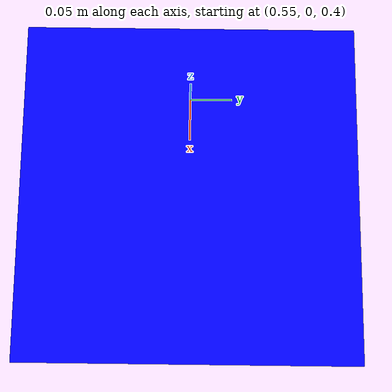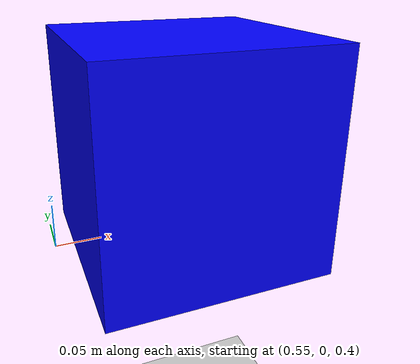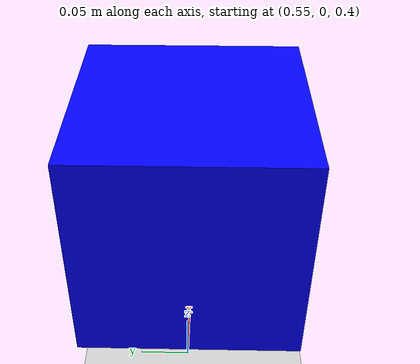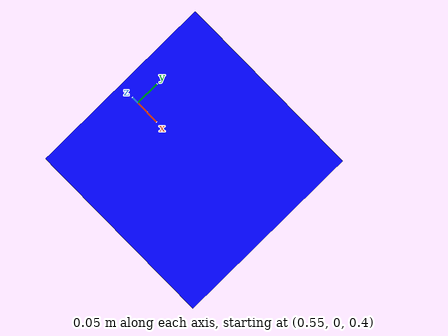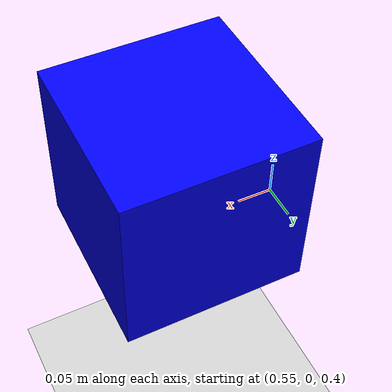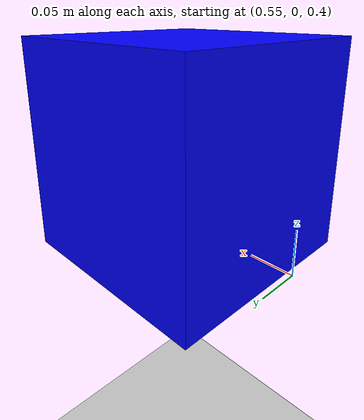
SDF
<?xml version="1.0" ?>
<sdf version="1.6">
  <world name="obstacle_world">
    <physics name="1ms" type="ode">
      <max_step_size>0.001</max_step_size>
      <real_time_factor>1.0</real_time_factor>
    </physics>
    <plugin filename="libignition-gazebo-physics-system.so" name="ignition::gazebo::systems::Physics"/>
    <plugin filename="libignition-gazebo-user-commands-system.so" name="ignition::gazebo::systems::UserCommands"/>
    <plugin filename="libignition-gazebo-scene-broadcaster-system.so" name="ignition::gazebo::systems::SceneBroadcaster"/>

    <light type="directional" name="sun">
      <cast_shadows>true</cast_shadows>
      <pose>0 0 10 0 0 0</pose>
      <diffuse>0.8 0.8 0.8 1</diffuse>
      <specular>0.2 0.2 0.2 1</specular>
      <direction>-0.5 0.1 -0.9</direction>
    </light>

    <model name="ground_plane">
      <static>true</static>
      <link name="link">
        <collision name="collision">
          <geometry><plane><normal>0 0 1</normal><size>100 100</size></plane></geometry>
        </collision>
        <visual name="visual">
          <geometry><plane><normal>0 0 1</normal><size>100 100</size></plane></geometry>
          <material><ambient>0.8 0.8 0.8 1</ambient><diffuse>0.8 0.8 0.8 1</diffuse></material>
        </visual>
      </link>
    </model>

    <model name="target_box">
      <static>true</static>
      <pose>0.7 0 0.5 0 0 0</pose>
      <link name="link">
        <visual name="visual">
          <geometry><box><size>0.25 0.25 0.25</size></box></geometry>
          <material><ambient>0 0 1 1</ambient><diffuse>0 0 1 1</diffuse></material>
        </visual>
        <collision name="collision">
          <geometry><box><size>0.25 0.25 0.25</size></box></geometry>
        </collision>
      </link>
    </model>
  </world>
</sdf>
